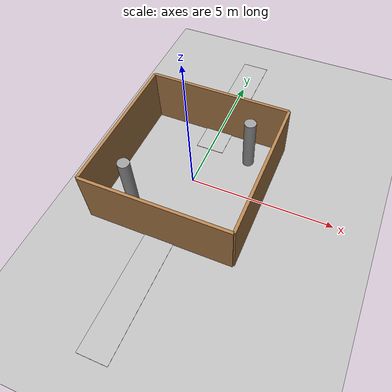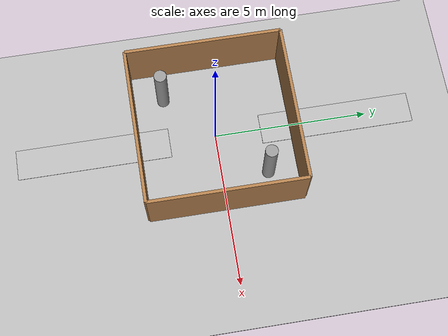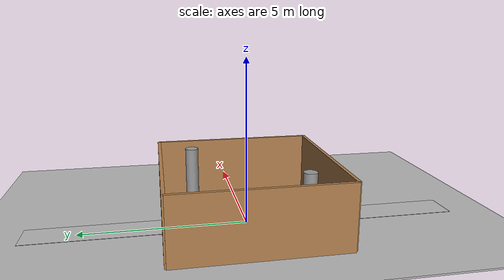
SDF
<sdf version="1.5">
 <world name="default">
  <physics type="ode">
   <gravity>0 0 -9.8066</gravity>
   <ode>
    <solver>
     <type>quick</type>
     <iters>10</iters>
     <sor>1.3</sor>
     <use_dynamic_moi_rescaling>0</use_dynamic_moi_rescaling>
    </solver>
    <constraints>
     <cfm>0.0</cfm>
     <erp>0.2</erp>
     <contact_max_correcting_vel>100</contact_max_correcting_vel>
     <contact_surface_layer>0.001</contact_surface_layer>
    </constraints>
   </ode>
   <max_step_size>0.004</max_step_size>
   <real_time_factor>1.0</real_time_factor>
   <real_time_update_rate>250</real_time_update_rate>
   <magnetic_field>6.0e-6 2.3e-5 -4.2e-5</magnetic_field>
  </physics>
  <light type="directional" name="sun">
   <cast_shadows>false</cast_shadows>
   <pose>0 0 100 0 0 0</pose>
   <diffuse>0.8 0.8 0.8 1</diffuse>
   <specular>0.9 0.9 0.9 1</specular>
   <attenuation>
    <range>1000</range>
    <constant>0.9</constant>
    <linear>0.01</linear>
    <quadratic>0.001</quadratic>
   </attenuation>
   <direction>0.2 0.2 -0.9</direction>
  </light>
  <include><uri>model://ground_plane</uri></include>
  <model name="texture">
   <static>true</static>
   <link name="lawn_ground">
    <visual name="visual">
     <cast_shadows>false</cast_shadows>
     <geometry><box><size>40 40 0.05</size></box></geometry>
     <material>
      <script>
       <uri>model://lawn_plane/materials/scripts</uri>
       <uri>model://lawn_plane/materials/textures</uri>
       <name>vrc/lawn</name>
      </script>
     </material>
    </visual>
   </link>
   <link name="sysu_logo2">
    <pose>-0.0 -4.0 0.05 0 0 0</pose>
    <visual name="visual">
     <cast_shadows>false</cast_shadows>
     <geometry><box><size>1.0 5.0 0.01</size></box></geometry>
     <material><script><uri>model://texture_CXY/texture.material</uri><name>xty</name></script></material>
    </visual>
   </link>
   <link name="sysu_logo">
    <pose>-0.0 4.0 0.05 0 0 0</pose>
    <visual name="visual">
     <cast_shadows>false</cast_shadows>
     <geometry><box><size>1.0 5.0 0.01</size></box></geometry>
     <material><script><uri>model://texture_CXY/texture.material</uri><name>xty</name></script></material>
    </visual>
   </link>
  </model>
  <model name="room_wall">
   <static>true</static>
   <link name="wall_front">
    <pose>2.5 0 1 0 -0 1.57</pose>
    <inertial><mass>2.0</mass></inertial>
    <collision name="collision"><geometry><box><size>5.0 0.1 2</size></box></geometry></collision>
    <visual name="visual">
     <geometry><box><size>5.0 0.1 2</size></box></geometry>
     <material>
      <script><uri>file://media/materials/scripts/gazebo.material</uri><name>Gazebo/Wood</name></script>
      <ambient>1 1 1 1</ambient>
     </material>
    </visual>
   </link>
   <link name="wall_back">
    <pose>-2.5 0 1 0 -0 1.57</pose>
    <inertial><mass>2.0</mass></inertial>
    <collision name="collision"><geometry><box><size>5.0 0.1 2</size></box></geometry></collision>
    <visual name="visual">
     <geometry><box><size>5.0 0.1 2</size></box></geometry>
     <material>
      <script><uri>file://media/materials/scripts/gazebo.material</uri><name>Gazebo/Wood</name></script>
      <ambient>1 1 1 1</ambient>
     </material>
    </visual>
   </link>
   <link name="wall_left">
    <pose>-0 2.5 1 0 -0 0</pose>
    <inertial><mass>2.0</mass></inertial>
    <collision name="collision"><geometry><box><size>5.0 0.1 2</size></box></geometry></collision>
    <visual name="visual">
     <geometry><box><size>5.0 0.1 2</size></box></geometry>
     <material>
      <script><uri>file://media/materials/scripts/gazebo.material</uri><name>Gazebo/Wood</name></script>
      <ambient>1 1 1 1</ambient>
     </material>
    </visual>
   </link>
   <link name="wall_right">
    <pose>-0 -2.5 1 0 -0 0</pose>
    <inertial><mass>2.0</mass></inertial>
    <collision name="collision"><geometry><box><size>5.0 0.1 2</size></box></geometry></collision>
    <visual name="visual">
     <geometry><box><size>5.0 0.1 2</size></box></geometry>
     <material>
      <script><uri>file://media/materials/scripts/gazebo.material</uri><name>Gazebo/Wood</name></script>
      <ambient>1 1 1 1</ambient>
     </material>
    </visual>
   </link>
  </model>
  <model name="cylinder_1"><include><uri>model://cylinder</uri><pose>1.5 1.5 1.0 0 0 0</pose></include></model>
  <model name="cylinder_2">
   <include><uri>model://cylinder</uri><pose>-1.5 -1.5 1.0 0 0 0</pose></include>
  </model>
 </world>
</sdf>

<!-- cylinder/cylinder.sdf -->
<sdf version='1.6'>
  <model name='cylinder'>
    <link name='link'>
      <inertial>
        <mass>1</mass>
        <pose frame=''>0 0 0 0 -0 0</pose>
      </inertial>
      <self_collide>0</self_collide>
      <enable_wind>0</enable_wind>
      <kinematic>0</kinematic>
      <pose frame=''>0 0 0 0 -0 0</pose>
      <gravity>1</gravity>
      <visual name='visual'>
        <geometry>
          <cylinder>
            <radius>0.2</radius>
            <length>2.0</length>
          </cylinder>
        </geometry>
        <material>
          <script>
            <name>Gazebo/Grey</name>
            <uri>file://media/materials/scripts/gazebo.material</uri>
          </script>
        </material>
        <pose frame=''>0 0 0 0 -0 0</pose>
        <transparency>0</transparency>
        <cast_shadows>1</cast_shadows>
      </visual>
      <collision name='collision'>
        <laser_retro>0</laser_retro>
        <max_contacts>10</max_contacts>
        <pose frame=''>0 0 0 0 -0 0</pose>
        <geometry>
          <cylinder>
            <radius>0.2</radius>
            <length>3.0</length>
          </cylinder>
        </geometry>
      </collision>
    </link>
    <static>1</static>
    <allow_auto_disable>1</allow_auto_disable>
  </model>
</sdf>
